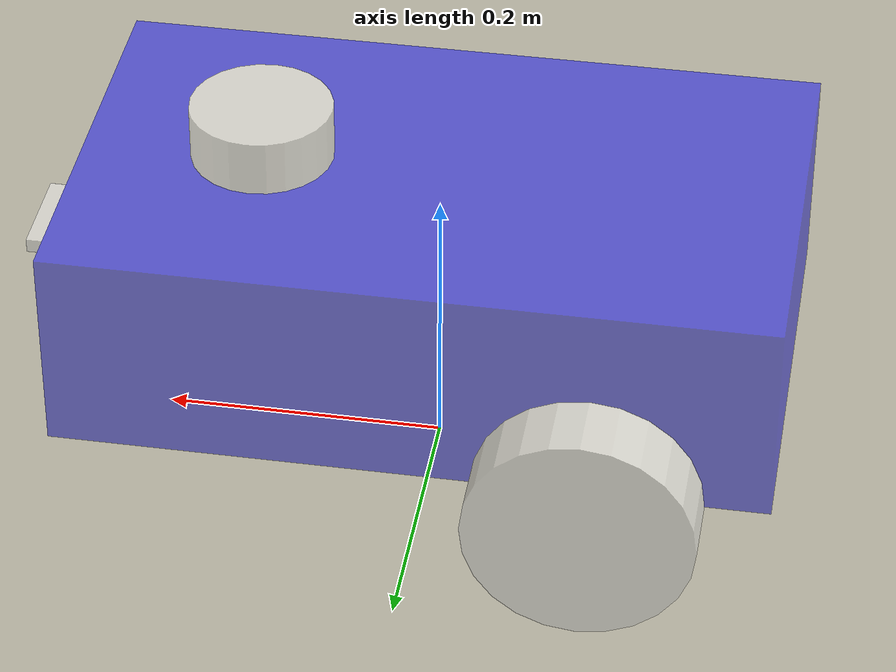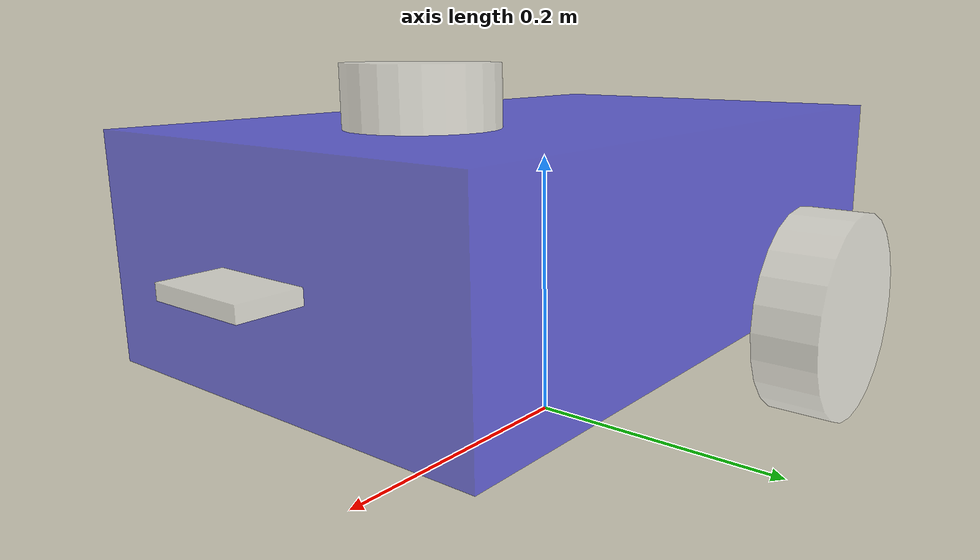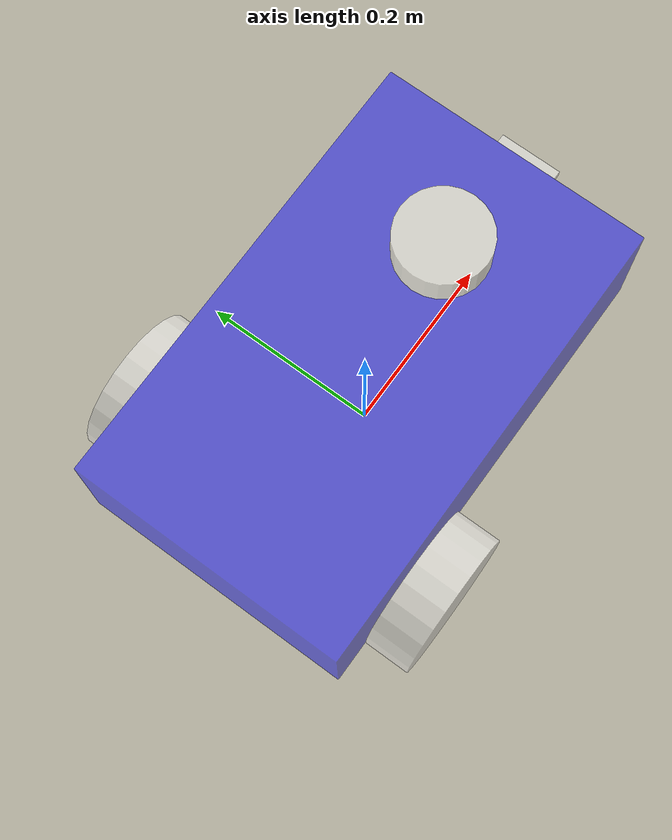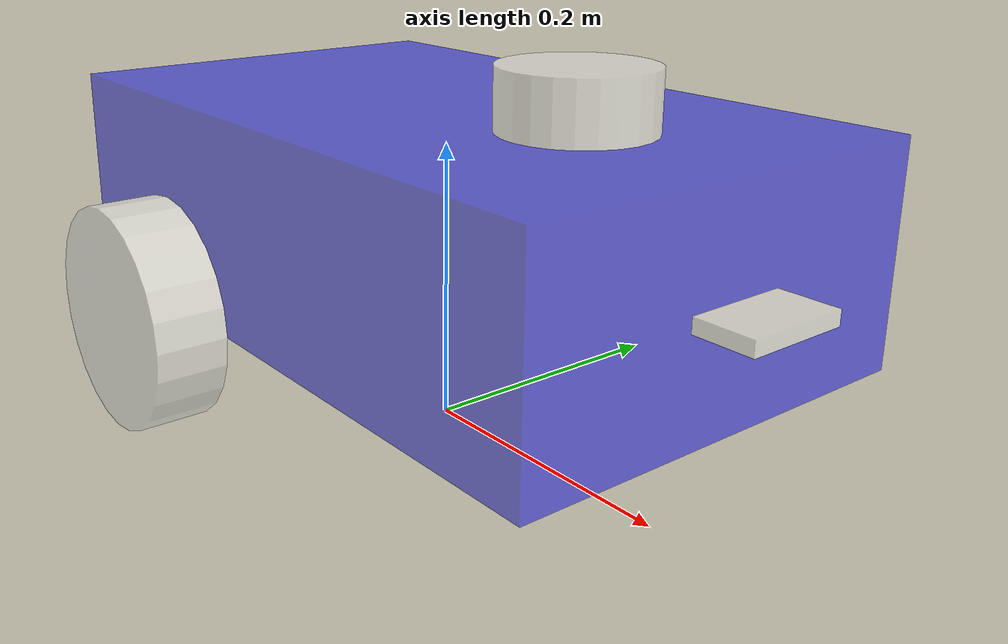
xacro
<?xml version="1.0"?>
<robot name="my_robot" xmlns:xacro="http://www.ros.org/wiki/xacro">
    <xacro:include filename="materials.xacro" />
    <xacro:include filename="robot_make.xacro" />
    <xacro:include filename="camera_link.xacro" />
    <xacro:include filename="laser_frame.xacro" />
    <xacro:include filename="robot_gazebo.xacro" />
    <xacro:include filename="robot_ros2_control.xacro" />
</robot>

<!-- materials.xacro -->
<robot name="my_robot" xmlns:xacro="http://www.ros.org/wiki/xacro">
    <xacro:property name="length" value="0.5" />
    <xacro:property name="breath" value="0.3" />
    <xacro:property name="height" value="0.15" />
    <xacro:property name="wheel_radius" value="0.08"/>
    <xacro:property name="laser_radius" value="0.05"/>
    <xacro:property name="laser_height" value="0.04"/>
    <material name="white">
        <color rgba="1.0 1.0 1.0 0.5"/>
    </material>
    <material name="blue">
        <color rgba="0.0 0.0 1.0 0.5"/>
    </material>
    <material name="red">
        <color rgba="1.0 0.0 0.0 0.0"/>
    </material>
</robot>

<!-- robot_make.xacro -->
<robot name="my_robot" xmlns:xacro="http://www.ros.org/wiki/xacro">
    <xacro:property name="chassis_mass" value="5.0"/>
    <xacro:property name="wheel_mass" value="0.5"/>
    <xacro:property name="wheel_width" value="0.05"/>
    <xacro:property name="caster_radius" value="0.04"/>
    <link name="base_footprint"/>
    <link name="chassis_link">
        <collision>
            <origin xyz="0 0 0" rpy="0 0 0"/>
            <geometry><box size="${length} ${breath} ${height}"/></geometry>
        </collision>
        <visual>
            <origin xyz="0 0 0" rpy="0 0 0"/>
            <geometry><box size="${length} ${breath} ${height}"/></geometry>
            <material name="blue"/>
        </visual>
        <inertial>
            <origin xyz="0 0 0" rpy="0 0 0"/>
            <mass value="${chassis_mass}"/>
            <inertia ixx="${chassis_mass/12*(breath*breath+height*height)}" ixy="0" ixz="0"
                     iyy="${chassis_mass/12*(length*length+height*height)}" iyz="0"
                     izz="${chassis_mass/12*(length*length+breath*breath)}"/>
        </inertial>
    </link>
    <joint name="chassis_joint" type="fixed">
        <origin xyz="0 0 ${height/2+wheel_radius}" rpy="0 0 0"/>
        <parent link="base_footprint"/>
        <child link="chassis_link"/>
    </joint>
    <xacro:macro name="wheel" params="name y">
        <link name="${name}_wheel">
            <inertial>
                <origin xyz="0 0 0" rpy="0 0 0"/>
                <mass value="${wheel_mass}"/>
                <inertia ixx="${wheel_mass/12*(3*wheel_radius*wheel_radius+wheel_width*wheel_width)}" ixy="0" ixz="0"
                         iyy="${wheel_mass/12*(3*wheel_radius*wheel_radius+wheel_width*wheel_width)}" iyz="0"
                         izz="${0.5*wheel_mass*wheel_radius*wheel_radius}"/>
            </inertial>
            <visual>
                <origin xyz="0 0 0" rpy="0 0 0"/>
                <geometry><cylinder radius="${wheel_radius}" length="${wheel_width}"/></geometry>
                <material name="white"/>
            </visual>
            <collision>
                <origin xyz="0 0 0" rpy="0 0 0"/>
                <geometry><cylinder radius="${wheel_radius}" length="${wheel_width}"/></geometry>
            </collision>
        </link>
        <joint name="${name}_wheel_joint" type="continuous">
            <origin xyz="${-(length/4)} ${y} ${-height/2}" rpy="${-pi/2} 0 0"/>
            <parent link="chassis_link"/>
            <child link="${name}_wheel"/>
            <axis xyz="0 0 1"/>
        </joint>
    </xacro:macro>
    <xacro:wheel name="left"  y="${breath/2+wheel_width/2}"/>
    <xacro:wheel name="right" y="${-(breath/2+wheel_width/2)}"/>
    <link name="castor_wheel">
        <inertial>
            <origin xyz="0 0 0" rpy="0 0 0"/>
            <mass value="0.2"/>
            <inertia ixx="${2/5*0.2*caster_radius*caster_radius}" ixy="0" ixz="0"
                     iyy="${2/5*0.2*caster_radius*caster_radius}" iyz="0"
                     izz="${2/5*0.2*caster_radius*caster_radius}"/>
        </inertial>
        <visual>
            <geometry><sphere radius="${caster_radius}"/></geometry>
            <material name="white"/>
        </visual>
        <collision>
            <geometry><sphere radius="${caster_radius}"/></geometry>
        </collision>
    </link>
    <joint name="castor_wheel_joint" type="fixed">
        <origin xyz="${length/4} 0 ${-(height/2+wheel_radius-caster_radius)}" rpy="0 0 0"/>
        <parent link="chassis_link"/>
        <child link="castor_wheel"/>
    </joint>
</robot>

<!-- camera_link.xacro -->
<robot name="my_robot" xmlns:xacro="http://www.ros.org/wiki/xacro">
    <link name="camera_link">
            <inertial>
        <origin xyz="0 0 0" rpy="0 0 0"/>
        <mass value="0.02"/>
        <inertia
            ixx="2.833333e-06"
            ixy="0"
            ixz="0"
            iyy="8.333333e-06"
            iyz="0"
            izz="1.083333e-05"/>
        </inertial>
        <visual>
            <origin xyz="0.0 0.0 0.0" rpy="0.0 0.0 1.57"/>
            <geometry>
                <box size="0.07 0.04 0.01"/>
            </geometry>
            <material name="white"/>
        </visual>
        <collision>
            <origin xyz="0.0 0.0 0.0" rpy="0.0 0.0 1.57"/>
            <geometry>
                <box size="0.07 0.04 0.01"/>
            </geometry>
        </collision>
    </link>
    <joint name="camera_joint" type="fixed">
        <origin xyz="${(length+0.04)/2} 0.0 0.0" rpy="0.0 0.0 0.0"/>
        <parent link="chassis_link"/>
        <child link="camera_link"/>
    </joint>
    <link name="camera_optical_link"/>
    <joint name="camera_optical_joint" type="fixed">
        <parent link="camera_link"/>
        <child link="camera_optical_link"/>
        <origin xyz="0.0 0.0 0.0" rpy="-1.57 0.0 -1.57"/>
    </joint>
</robot>

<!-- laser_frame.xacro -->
<robot name="my_robot"
       xmlns:xacro="http://www.ros.org/wiki/xacro">
    <link name="laser_frame">
        <inertial>
            <origin xyz="0.0 0.0 0.0" rpy="0.0 0.0 0.0"/>
            <mass value="0.1"/>
            <inertia
                ixx="${0.5*0.1*laser_radius*laser_radius}"
                ixy="0.0"
                ixz="0.0"
                iyy="${0.5*0.1*laser_radius*laser_radius}"
                iyz="0.0"
                izz="${0.5*0.1*laser_radius*laser_radius}"/>
        </inertial>
        <visual>
            <origin xyz="0.0 0.0 0.0"
                    rpy="0.0 0.0 0.0"/>
            <geometry>
                <cylinder
                    radius="0.05"
                    length="0.04"/>
            </geometry>
            <material name="white"/>
        </visual>
        <collision>
            <origin xyz="0.0 0.0 0.0"
                    rpy="0.0 0.0 0.0"/>
            <geometry>
                <cylinder
                    radius="0.05"
                    length="0.04"/>
            </geometry>
        </collision>
    </link>
    <joint name="laser_frame_joint"
           type="fixed">
        <origin
            xyz="${length/4} 0.0 ${(height/2)+(laser_height/2)}"
            rpy="0.0 0.0 0.0"/>
        <parent link="chassis_link"/>
        <child link="laser_frame"/>
    </joint>
</robot>
